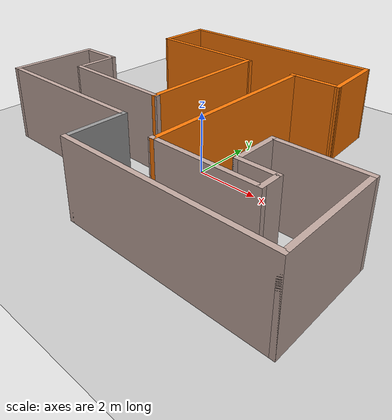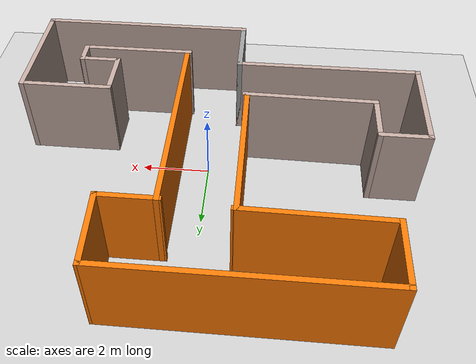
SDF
<sdf version="1.6">
 <world name="default">
  <light name="sun" type="directional">
   <pose>0 0 10 0 -0 0</pose>
   <diffuse>0.8 0.8 0.8 1</diffuse>
   <specular>0.2 0.2 0.2 1</specular>
   <attenuation>
    <range>1000</range>
    <constant>0.9</constant>
    <linear>0.01</linear>
    <quadratic>0.001</quadratic>
   </attenuation>
   <direction>-0.5 0.1 -0.9</direction>
  </light>
  <model name="ground_plane">
   <static>1</static>
   <link name="link">
    <collision name="collision">
     <geometry><plane><normal>0 0 1</normal><size>100 100</size></plane></geometry>
     <surface>
      <contact><collide_bitmask>65535</collide_bitmask></contact>
      <friction><ode><mu>100</mu><mu2>50</mu2></ode></friction>
     </surface>
    </collision>
    <visual name="visual">
     <cast_shadows>0</cast_shadows>
     <geometry><plane><normal>0 0 1</normal><size>100 100</size></plane></geometry>
     <material>
      <script><uri>file://media/materials/scripts/gazebo.material</uri><name>Gazebo/Grey</name></script>
     </material>
    </visual>
   </link>
  </model>
  <gravity>0 0 -9.8</gravity>
  <magnetic_field>6e-06 2.3e-05 -4.2e-05</magnetic_field>
  <atmosphere type="adiabatic"/>
  <physics name="default_physics" default="0" type="ode">
   <max_step_size>0.001</max_step_size>
   <real_time_factor>1</real_time_factor>
   <real_time_update_rate>1000</real_time_update_rate>
  </physics>
  <scene><ambient>0.4 0.4 0.4 1</ambient><background>0.7 0.7 0.7 1</background><shadows>1</shadows></scene>
  <spherical_coordinates>
   <surface_model>EARTH_WGS84</surface_model>
   <latitude_deg>0</latitude_deg>
   <longitude_deg>0</longitude_deg>
   <elevation>0</elevation>
   <heading_deg>0</heading_deg>
  </spherical_coordinates>
  <model name="my_world">
   <pose>-0.271053 0.657336 0 0 -0 0</pose>
   <link name="Wall_0">
    <collision name="Wall_0_Collision">
     <geometry><box><size>7.5 0.15 2.5</size></box></geometry>
     <pose>0 0 1.25 0 -0 0</pose>
    </collision>
    <visual name="Wall_0_Visual">
     <pose>0 0 1.25 0 -0 0</pose>
     <geometry><box><size>7.5 0.15 2.5</size></box></geometry>
     <material>
      <script><uri>file://media/materials/scripts/gazebo.material</uri><name>Gazebo/Grey</name></script>
      <ambient>0.996078 0.47451 0.0196078 1</ambient>
     </material>
     <meta><layer>0</layer></meta>
    </visual>
    <pose>-1.075 4.77308 0 0 -0 3.14159</pose>
   </link>
   <link name="Wall_1">
    <collision name="Wall_1_Collision">
     <geometry><box><size>2 0.15 2.5</size></box></geometry>
     <pose>0 0 1.25 0 -0 0</pose>
    </collision>
    <visual name="Wall_1_Visual">
     <pose>0 0 1.25 0 -0 0</pose>
     <geometry><box><size>2 0.15 2.5</size></box></geometry>
     <material>
      <script><uri>file://media/materials/scripts/gazebo.material</uri><name>Gazebo/Grey</name></script>
      <ambient>0.996078 0.47451 0.0196078 1</ambient>
     </material>
     <meta><layer>0</layer></meta>
    </visual>
    <pose>-4.75 3.84808 0 0 0 -1.5708</pose>
   </link>
   <link name="Wall_10">
    <collision name="Wall_10_Collision">
     <geometry><box><size>6.5 0.15 2.5</size></box></geometry>
     <pose>0 0 1.25 0 -0 0</pose>
    </collision>
    <visual name="Wall_10_Visual">
     <pose>0 0 1.25 0 -0 0</pose>
     <geometry><box><size>6.5 0.15 2.5</size></box></geometry>
     <material>
      <script><uri>file://media/materials/scripts/gazebo.material</uri><name>Gazebo/Grey</name></script>
      <ambient>0.760784 0.662745 0.627451 1</ambient>
     </material>
     <meta><layer>0</layer></meta>
    </visual>
    <pose>2.675 -4.77692 0 0 -0 0</pose>
   </link>
   <link name="Wall_11">
    <collision name="Wall_11_Collision">
     <geometry><box><size>3.5 0.15 2.5</size></box></geometry>
     <pose>0 0 1.25 0 -0 0</pose>
    </collision>
    <visual name="Wall_11_Visual">
     <pose>0 0 1.25 0 -0 0</pose>
     <geometry><box><size>3.5 0.15 2.5</size></box></geometry>
     <material>
      <script><uri>file://media/materials/scripts/gazebo.material</uri><name>Gazebo/Grey</name></script>
      <ambient>0.760784 0.662745 0.627451 1</ambient>
     </material>
     <meta><layer>0</layer></meta>
    </visual>
    <pose>5.85 -3.10192 0 0 -0 1.5708</pose>
   </link>
   <link name="Wall_12">
    <collision name="Wall_12_Collision">
     <geometry><box><size>2.75 0.15 2.5</size></box></geometry>
     <pose>0 0 1.25 0 -0 0</pose>
    </collision>
    <visual name="Wall_12_Visual">
     <pose>0 0 1.25 0 -0 0</pose>
     <geometry><box><size>2.75 0.15 2.5</size></box></geometry>
     <material>
      <script><uri>file://media/materials/scripts/gazebo.material</uri><name>Gazebo/Grey</name></script>
      <ambient>0.760784 0.662745 0.627451 1</ambient>
     </material>
     <meta><layer>0</layer></meta>
    </visual>
    <pose>4.55 -1.42692 0 0 -0 3.14159</pose>
   </link>
   <link name="Wall_13">
    <collision name="Wall_13_Collision">
     <geometry><box><size>1.5 0.15 2.5</size></box></geometry>
     <pose>0 0 1.25 0 -0 0</pose>
    </collision>
    <visual name="Wall_13_Visual">
     <pose>0 0 1.25 0 -0 0</pose>
     <geometry><box><size>1.5 0.15 2.5</size></box></geometry>
     <material>
      <script><uri>file://media/materials/scripts/gazebo.material</uri><name>Gazebo/Grey</name></script>
      <ambient>0.760784 0.662745 0.627451 1</ambient>
     </material>
     <meta><layer>0</layer></meta>
    </visual>
    <pose>3.25 -2.10192 0 0 0 -1.5708</pose>
   </link>
   <link name="Wall_14">
    <collision name="Wall_14_Collision">
     <geometry><box><size>1.25 0.15 2.5</size></box></geometry>
     <pose>0 0 1.25 0 -0 0</pose>
    </collision>
    <visual name="Wall_14_Visual">
     <pose>0 0 1.25 0 -0 0</pose>
     <geometry><box><size>1.25 0.15 2.5</size></box></geometry>
     <material>
      <script><uri>file://media/materials/scripts/gazebo.material</uri><name>Gazebo/Grey</name></script>
      <ambient>0.760784 0.662745 0.627451 1</ambient>
     </material>
     <meta><layer>0</layer></meta>
    </visual>
    <pose>3.8 -2.77692 0 0 -0 0</pose>
   </link>
   <link name="Wall_15">
    <collision name="Wall_15_Collision">
     <geometry><box><size>0.75 0.15 2.5</size></box></geometry>
     <pose>0 0 1.25 0 -0 0</pose>
    </collision>
    <visual name="Wall_15_Visual">
     <pose>0 0 1.25 0 -0 0</pose>
     <geometry><box><size>0.75 0.15 2.5</size></box></geometry>
     <material>
      <script><uri>file://media/materials/scripts/gazebo.material</uri><name>Gazebo/Grey</name></script>
      <ambient>0.760784 0.662745 0.627451 1</ambient>
     </material>
     <meta><layer>0</layer></meta>
    </visual>
    <pose>4.35 -3.07692 0 0 0 -1.5708</pose>
   </link>
   <link name="Wall_16">
    <collision name="Wall_16_Collision">
     <geometry><box><size>3.39203 0.15 2.5</size></box></geometry>
     <pose>0 0 1.25 0 -0 0</pose>
    </collision>
    <visual name="Wall_16_Visual">
     <pose>0 0 1.25 0 -0 0</pose>
     <geometry><box><size>3.39203 0.15 2.5</size></box></geometry>
     <material>
      <script><uri>file://media/materials/scripts/gazebo.material</uri><name>Gazebo/Grey</name></script>
      <ambient>0.760784 0.662745 0.627451 1</ambient>
     </material>
     <meta><layer>0</layer></meta>
    </visual>
    <pose>2.72899 -3.37692 0 0 -0 3.14159</pose>
   </link>
   <link name="Wall_17">
    <collision name="Wall_17_Collision">
     <geometry><box><size>6.25 0.15 2.5</size></box></geometry>
     <pose>0 0 1.25 0 -0 0</pose>
    </collision>
    <visual name="Wall_17_Visual">
     <pose>0 0 1.25 0 -0 0</pose>
     <geometry><box><size>6.25 0.15 2.5</size></box></geometry>
     <material>
      <script><uri>file://media/materials/scripts/gazebo.material</uri><name>Gazebo/Grey</name></script>
      <ambient>0.996078 0.47451 0.0196078 1</ambient>
     </material>
     <meta><layer>0</layer></meta>
    </visual>
    <pose>1.16147 -0.32692 0 0 -0 1.5708</pose>
   </link>
   <link name="Wall_18">
    <collision name="Wall_18_Collision">
     <geometry><box><size>1.75 0.15 2.5</size></box></geometry>
     <pose>0 0 1.25 0 -0 0</pose>
    </collision>
    <visual name="Wall_18_Visual">
     <pose>0 0 1.25 0 -0 0</pose>
     <geometry><box><size>1.75 0.15 2.5</size></box></geometry>
     <material>
      <script><uri>file://media/materials/scripts/gazebo.material</uri><name>Gazebo/Grey</name></script>
      <ambient>0.996078 0.47451 0.0196078 1</ambient>
     </material>
     <meta><layer>0</layer></meta>
    </visual>
    <pose>1.90797 2.72308 0 0 -0 0</pose>
   </link>
   <link name="Wall_19">
    <collision name="Wall_19_Collision">
     <geometry><box><size>2.20284 0.15 2.5</size></box></geometry>
     <pose>0 0 1.25 0 -0 0</pose>
    </collision>
    <visual name="Wall_19_Visual">
     <pose>0 0 1.25 0 -0 0</pose>
     <geometry><box><size>2.20284 0.15 2.5</size></box></geometry>
     <material>
      <script><uri>file://media/materials/scripts/gazebo.material</uri><name>Gazebo/Grey</name></script>
      <ambient>0.996078 0.47451 0.0196078 1</ambient>
     </material>
     <meta><layer>0</layer></meta>
    </visual>
    <pose>2.65399 3.74808 0 0 -0 1.62342</pose>
   </link>
   <link name="Wall_2">
    <collision name="Wall_2_Collision">
     <geometry><box><size>4.14142 0.15 2.5</size></box></geometry>
     <pose>0 0 1.25 0 -0 0</pose>
    </collision>
    <visual name="Wall_2_Visual">
     <pose>0 0 1.25 0 -0 0</pose>
     <geometry><box><size>4.14142 0.15 2.5</size></box></geometry>
     <material>
      <script><uri>file://media/materials/scripts/gazebo.material</uri><name>Gazebo/Grey</name></script>
      <ambient>0.996078 0.47451 0.0196078 1</ambient>
     </material>
     <meta><layer>0</layer></meta>
    </visual>
    <pose>-2.75447 2.89633 0 0 0 -0.013405</pose>
   </link>
   <link name="Wall_3">
    <collision name="Wall_3_Collision">
     <geometry><box><size>4.5 0.15 2.5</size></box></geometry>
     <pose>0 0 1.25 0 -0 0</pose>
    </collision>
    <visual name="Wall_3_Visual">
     <pose>0 0 1.25 0 -0 0</pose>
     <geometry><box><size>4.5 0.15 2.5</size></box></geometry>
     <material>
      <script><uri>file://media/materials/scripts/gazebo.material</uri><name>Gazebo/Grey</name></script>
      <ambient>0.996078 0.47451 0.0196078 1</ambient>
     </material>
     <meta><layer>0</layer></meta>
    </visual>
    <pose>-0.812437 0.694577 0 0 0 -1.5708</pose>
   </link>
   <link name="Wall_4">
    <collision name="Wall_4_Collision">
     <geometry><box><size>3.89145 0.15 2.5</size></box></geometry>
     <pose>0 0 1.25 0 -0 0</pose>
    </collision>
    <visual name="Wall_4_Visual">
     <pose>0 0 1.25 0 -0 0</pose>
     <geometry><box><size>3.89145 0.15 2.5</size></box></geometry>
     <material>
      <script><uri>file://media/materials/scripts/gazebo.material</uri><name>Gazebo/Grey</name></script>
      <ambient>0.760784 0.662745 0.627451 1</ambient>
     </material>
     <meta><layer>0</layer></meta>
    </visual>
    <pose>-2.62947 -1.45367 0 0 -0 3.12729</pose>
   </link>
   <link name="Wall_5">
    <collision name="Wall_5_Collision">
     <geometry><box><size>1.5 0.15 2.5</size></box></geometry>
     <pose>0 0 1.25 0 -0 0</pose>
    </collision>
    <visual name="Wall_5_Visual">
     <pose>0 0 1.25 0 -0 0</pose>
     <geometry><box><size>1.5 0.15 2.5</size></box></geometry>
     <material>
      <script><uri>file://media/materials/scripts/gazebo.material</uri><name>Gazebo/Grey</name></script>
      <ambient>0.760784 0.662745 0.627451 1</ambient>
     </material>
     <meta><layer>0</layer></meta>
    </visual>
    <pose>-4.5 -0.75192 0 0 -0 1.5708</pose>
   </link>
   <link name="Wall_6">
    <collision name="Wall_6_Collision">
     <geometry><box><size>1.5 0.15 2.5</size></box></geometry>
     <pose>0 0 1.25 0 -0 0</pose>
    </collision>
    <visual name="Wall_6_Visual">
     <pose>0 0 1.25 0 -0 0</pose>
     <geometry><box><size>1.5 0.15 2.5</size></box></geometry>
     <material>
      <script><uri>file://media/materials/scripts/gazebo.material</uri><name>Gazebo/Grey</name></script>
      <ambient>0.760784 0.662745 0.627451 1</ambient>
     </material>
     <meta><layer>0</layer></meta>
    </visual>
    <pose>-5.175 -0.07692 0 0 -0 3.14159</pose>
   </link>
   <link name="Wall_7">
    <collision name="Wall_7_Collision">
     <geometry><box><size>3 0.15 2.5</size></box></geometry>
     <pose>0 0 1.25 0 -0 0</pose>
    </collision>
    <visual name="Wall_7_Visual">
     <pose>0 0 1.25 0 -0 0</pose>
     <geometry><box><size>3 0.15 2.5</size></box></geometry>
     <material>
      <script><uri>file://media/materials/scripts/gazebo.material</uri><name>Gazebo/Grey</name></script>
      <ambient>0.760784 0.662745 0.627451 1</ambient>
     </material>
     <meta><layer>0</layer></meta>
    </visual>
    <pose>-5.85 -1.50192 0 0 0 -1.5708</pose>
   </link>
   <link name="Wall_8">
    <collision name="Wall_8_Collision">
     <geometry><box><size>5.5 0.15 2.5</size></box></geometry>
     <pose>0 0 1.25 0 -0 0</pose>
    </collision>
    <visual name="Wall_8_Visual">
     <pose>0 0 1.25 0 -0 0</pose>
     <geometry><box><size>5.5 0.15 2.5</size></box></geometry>
     <material>
      <script><uri>file://media/materials/scripts/gazebo.material</uri><name>Gazebo/Grey</name></script>
      <ambient>0.760784 0.662745 0.627451 1</ambient>
     </material>
     <meta><layer>0</layer></meta>
    </visual>
    <pose>-3.175 -2.92692 0 0 -0 0</pose>
   </link>
   <link name="Wall_9">
    <collision name="Wall_9_Collision">
     <geometry><box><size>2 0.15 2.5</size></box></geometry>
     <pose>0 0 1.25 0 -0 0</pose>
    </collision>
    <visual name="Wall_9_Visual">
     <pose>0 0 1.25 0 -0 0</pose>
     <geometry><box><size>2 0.15 2.5</size></box></geometry>
     <material>
      <script><uri>file://media/materials/scripts/gazebo.material</uri><name>Gazebo/Grey</name></script>
      <ambient>1 1 1 1</ambient>
     </material>
     <meta><layer>0</layer></meta>
    </visual>
    <pose>-0.5 -3.85192 0 0 0 -1.5708</pose>
   </link>
   <static>1</static>
  </model>
 </world>
</sdf>
